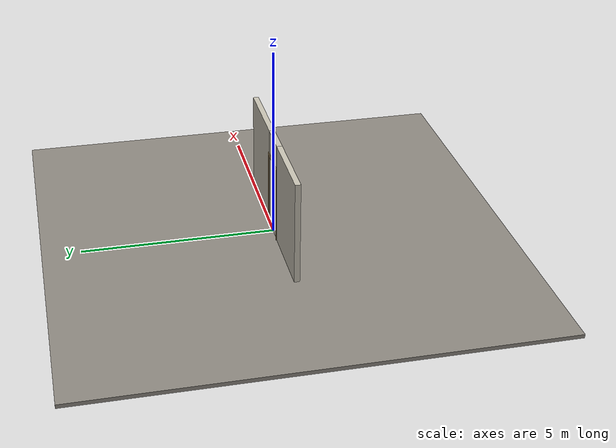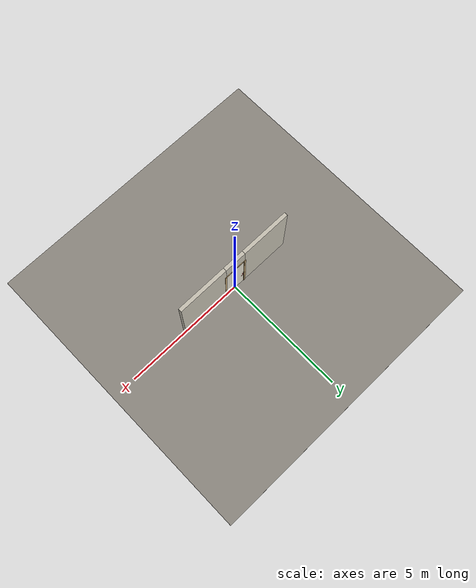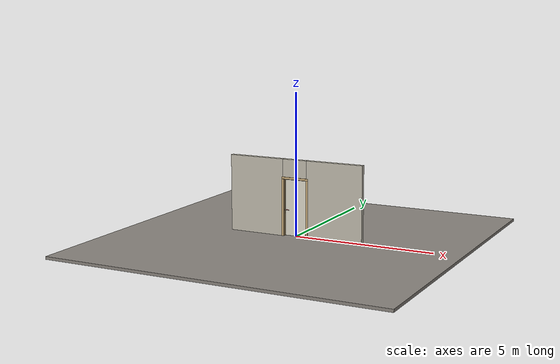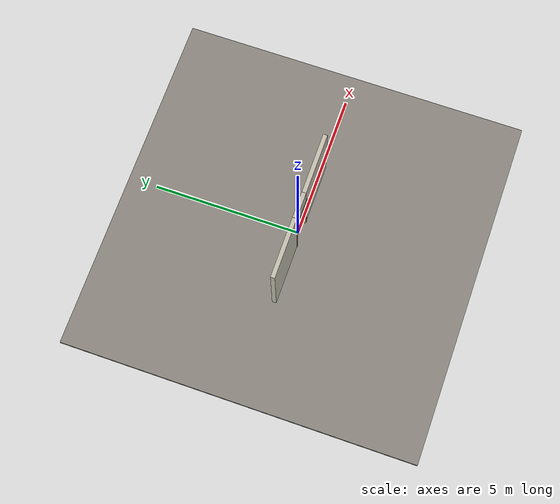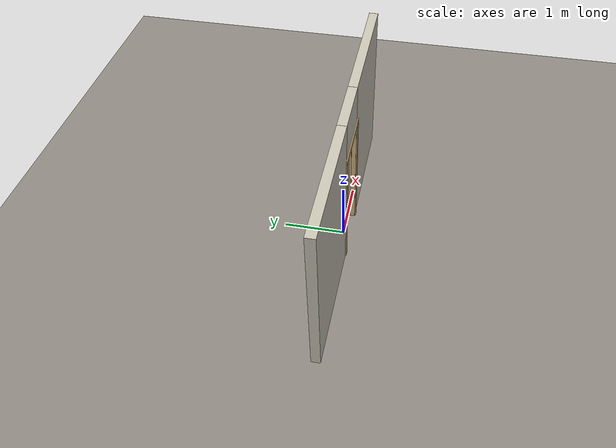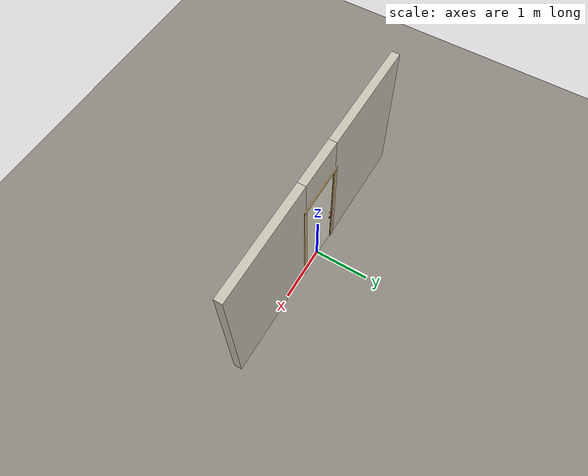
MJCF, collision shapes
<?xml version="1.0" ?>
<mujoco model="db0606_swing_single_full">
  <compiler angle="radian" meshdir="../../hardware" texturedir="../../textures" autolimits="true" inertiafromgeom="false"/>
  <option timestep="0.002" integrator="implicitfast" cone="elliptic" impratio="10" noslip_iterations="3">
    <flag multiccd="enable"/>
  </option>
  <size memory="16M"/>
  <default>
    <geom condim="4" solref="0.005 1" solimp="0.95 0.99 0.001"/>
    <joint solreflimit="0.005 1" solimplimit="0.95 0.99 0.001"/>
    <tendon solreflimit="0.005 1"/>
    <equality solref="0.002 1"/>
  </default>
  <visual>
    <headlight ambient="0.4 0.4 0.4" diffuse="0.7 0.7 0.7" specular="0.2 0.2 0.2"/>
    <quality shadowsize="4096"/>
    <map znear="0.01" zfar="60"/>
  </visual>
  <asset>
    <mesh name="hinge_96510cf394" file="hinge_96510cf394.obj"/>
    <mesh name="hinge_jamb_7fd4ca52b2" file="hinge_jamb_7fd4ca52b2.obj"/>
    <mesh name="lever_748f08efca" file="lever_748f08efca.obj"/>
    <material name="mat_floor" rgba="0.55 0.53 0.5 1" specular="0.2" shininess="0.15" reflectance="0"/>
    <material name="mat_wall" rgba="0.78 0.76 0.7 1" specular="0.2" shininess="0.1" reflectance="0"/>
    <material name="mat_leaf" rgba="0.9 0.88 0.82 1" specular="0.2" shininess="0.58" reflectance="0"/>
    <material name="mat_leaf_louver" rgba="0.765 0.748 0.697 1" specular="0.2" shininess="0.4" reflectance="0"/>
    <material name="mat_hinge" rgba="0.65 0.66 0.68 1" specular="0.74" shininess="0.5" reflectance="0.36"/>
    <material name="mat_op_chrome" rgba="0.9 0.9 0.92 1" specular="0.8" shininess="0.9" reflectance="0.4"/>
    <material name="mat_trim" rgba="0.85 0.66 0.3 1" specular="0.8" shininess="0.75" reflectance="0.4"/>
    <material name="mat_bolt" rgba="0.85 0.66 0.3 1" specular="0.8" shininess="0.75" reflectance="0.4"/>
    <material name="mat_frame" rgba="0.82 0.7 0.5 1" specular="0.2" shininess="0.45" reflectance="0"/>
    <texture name="skybox" type="skybox" builtin="gradient" rgb1="0.6 0.7 0.85" rgb2="0.9 0.92 0.95" width="256" height="256"/>
  </asset>
  <worldbody>
    <light name="sun" pos="1.5 -2.5 4" dir="-0.3 0.5 -0.8" directional="true" diffuse="0.8 0.8 0.8" specular="0.3 0.3 0.3" castshadow="true"/>
    <light name="fill" pos="-1.5 2.5 3" dir="0.3 -0.5 -0.7" directional="true" diffuse="0.35 0.35 0.4" castshadow="false"/>
    <camera name="robot_view" pos="0 -2.546125 1.698475" xyaxes="1 0 0 0 0.26963 0.962964" fovy="52"/>
    <camera name="far_view" pos="0 2.450125 1.698475" xyaxes="-1 0 0 0 -0.26963 0.962964" fovy="52"/>
    <camera name="iso" pos="-1.898575 -2.146425 2.098175" xyaxes="0.741536 -0.670913 0 0.242917 0.268487 0.932151" fovy="46"/>
    <camera name="detail_handle" pos="-0.0764 -0.8725 1.194" xyaxes="0.97561 0.219512 0 -0.070934 0.315262 0.94635" fovy="38"/>
    <geom name="floor" type="box" size="6 6 0.05" pos="0 0 -0.05" material="mat_floor" group="0" contype="1" conaffinity="1" friction="0.8 0.005 0.0001" density="2400"/>
    <geom name="wall_left" type="box" size="1.0205 0.0725 1.35" pos="-1.4795 -0.048 1.35" material="mat_wall" group="0" contype="1" conaffinity="1" friction="0.6 0.005 0.0001" density="800"/>
    <geom name="wall_right" type="box" size="1.0355 0.0725 1.35" pos="1.4645 -0.048 1.35" material="mat_wall" group="0" contype="1" conaffinity="1" friction="0.6 0.005 0.0001" density="800"/>
    <geom name="wall_header" type="box" size="0.444 0.0725 0.3265" pos="-0.015 -0.048 2.3735" material="mat_wall" group="0" contype="1" conaffinity="1" friction="0.6 0.005 0.0001" density="800"/>
    <geom name="hinge_0_jamb" type="mesh" mesh="hinge_jamb_7fd4ca52b2" pos="0.407 0.0245 0.259" quat="0 0 0 1" material="mat_hinge" group="1" contype="0" conaffinity="0" density="7850"/>
    <geom name="hinge_1_jamb" type="mesh" mesh="hinge_jamb_7fd4ca52b2" pos="0.407 0.0245 1.0015" quat="0 0 0 1" material="mat_hinge" group="1" contype="0" conaffinity="0" density="7850"/>
    <geom name="hinge_2_jamb" type="mesh" mesh="hinge_jamb_7fd4ca52b2" pos="0.407 0.0245 1.814" quat="0 0 0 1" material="mat_hinge" group="1" contype="0" conaffinity="0" density="7850"/>
    <geom name="jamb_hinge" type="box" size="0.0095 0.0725 0.999" pos="0.4195 -0.048 0.999" material="mat_frame" group="0" contype="1" conaffinity="1" friction="0.6 0.005 0.0001" density="400"/>
    <geom name="strike_914_wall_n" type="box" size="0.0245 0.056325 0.0167" pos="-0.4345 -0.064175 0.914" material="mat_frame" group="0" contype="1" conaffinity="1" friction="0.6 0.005 0.0001" density="400"/>
    <geom name="strike_914_wall_p" type="box" size="0.0245 0.008 0.0167" pos="-0.4345 0.01585 0.914" material="mat_frame" group="0" contype="1" conaffinity="1" friction="0.6 0.005 0.0001" density="400"/>
    <geom name="strike_914_ramp" type="box" size="0.0245 0.01649 0.0167" pos="-0.439136 0.028673 0.914" quat="0.977148 0 0 0.212558" material="mat_frame" group="0" contype="1" conaffinity="1" friction="0.12 0.005 0.0001" density="400"/>
    <geom name="strike_914_back" type="box" size="0.01615 0.00785 0.0167" pos="-0.44285 0 0.914" material="mat_frame" group="0" contype="1" conaffinity="1" friction="0.6 0.005 0.0001" density="400"/>
    <geom name="jamb_strike_0" type="box" size="0.0245 0.0725 0.44865" pos="-0.4345 -0.048 0.44865" material="mat_frame" group="0" contype="1" conaffinity="1" friction="0.6 0.005 0.0001" density="400"/>
    <geom name="jamb_strike_1" type="box" size="0.0245 0.0725 0.53365" pos="-0.4345 -0.048 1.46435" material="mat_frame" group="0" contype="1" conaffinity="1" friction="0.6 0.005 0.0001" density="400"/>
    <geom name="jamb_head" type="box" size="0.444 0.0725 0.0095" pos="-0.015 -0.048 2.0075" material="mat_frame" group="0" contype="1" conaffinity="1" friction="0.6 0.005 0.0001" density="400"/>
    <geom name="head_stud" type="box" size="0.444 0.0725 0.015" pos="-0.015 -0.048 2.032" material="mat_wall" group="0" contype="1" conaffinity="1" friction="0.6 0.005 0.0001" density="500"/>
    <geom name="stop_hinge" type="box" size="0.0055 0.016 0.999" pos="0.4045 -0.034 0.999" material="mat_frame" group="0" contype="1" conaffinity="1" friction="0.6 0.005 0.0001" density="400"/>
    <geom name="stop_strike" type="box" size="0.0055 0.016 0.999" pos="-0.4045 -0.034 0.999" material="mat_frame" group="0" contype="1" conaffinity="1" friction="0.6 0.005 0.0001" density="400"/>
    <geom name="stop_head" type="box" size="0.41 0.016 0.0055" pos="0 -0.034 1.9925" material="mat_frame" group="0" contype="1" conaffinity="1" friction="0.6 0.005 0.0001" density="400"/>
    <geom name="casing_l_n" type="box" size="0.035 0.008 1.0085" pos="-0.459 -0.1285 0.999" material="mat_frame" group="2" contype="0" conaffinity="0" density="400"/>
    <geom name="casing_r_n" type="box" size="0.035 0.008 1.0085" pos="0.459 -0.1285 0.999" material="mat_frame" group="2" contype="0" conaffinity="0" density="400"/>
    <geom name="casing_h_n" type="box" size="0.494 0.008 0.035" pos="0 -0.1285 2.047" material="mat_frame" group="2" contype="0" conaffinity="0" density="400"/>
    <geom name="casing_l_p" type="box" size="0.035 0.008 1.0085" pos="-0.459 0.0325 0.999" material="mat_frame" group="2" contype="0" conaffinity="0" density="400"/>
    <geom name="casing_r_p" type="box" size="0.035 0.008 1.0085" pos="0.459 0.0325 0.999" material="mat_frame" group="2" contype="0" conaffinity="0" density="400"/>
    <geom name="casing_h_p" type="box" size="0.494 0.008 0.035" pos="0 0.0325 2.047" material="mat_frame" group="2" contype="0" conaffinity="0" density="400"/>
    <site name="approach_point" pos="0 -1.5 0" quat="1 0 0 0" size="0.05" rgba="0.2 0.9 0.2 0.5" group="4"/>
    <site name="goal_point" pos="0 1.5 0" quat="1 0 0 0" size="0.05" rgba="0.2 0.9 0.2 0.5" group="4"/>
    <site name="door_plane_center" pos="0 0 0.999" quat="1 0 0 0" size="0.02" rgba="0.2 0.9 0.2 0.5" group="4"/>
    <body name="leaf" pos="0.41 0 0">
      <inertial pos="-0.396928 0.000468 1.002174" mass="12.935072" quat="0.499523 0.501086 -0.498897 0.500491" diaginertia="0.758951667 4.275342568 5.031446487"/>
      <joint name="leaf_hinge" type="hinge" axis="0 0 -1" pos="-0.003 0.0245 0" limited="true" range="0 1.745329" damping="0.206618" frictionloss="6.2112" armature="0.02"/>
      <geom name="leaf_slab" type="box" size="0.4065 0.0175 0.9925" pos="-0.4095 0 1.0015" material="mat_leaf" group="0" contype="1" conaffinity="1" friction="0.35 0.005 0.0001" density="1"/>
      <geom name="leaf_louver_0" type="box" size="0.3165 0.002 0.026527" pos="-0.4095 0 0.252614" quat="0.953717 0.300706 0 0" material="mat_leaf_louver" group="1" contype="0" conaffinity="0" density="1"/>
      <geom name="leaf_louver_1" type="box" size="0.3165 0.002 0.026527" pos="-0.4095 0 0.303141" quat="0.953717 0.300706 0 0" material="mat_leaf_louver" group="1" contype="0" conaffinity="0" density="1"/>
      <geom name="leaf_louver_2" type="box" size="0.3165 0.002 0.026527" pos="-0.4095 0 0.353668" quat="0.953717 0.300706 0 0" material="mat_leaf_louver" group="1" contype="0" conaffinity="0" density="1"/>
      <geom name="leaf_louver_3" type="box" size="0.3165 0.002 0.026527" pos="-0.4095 0 0.404195" quat="0.953717 0.300706 0 0" material="mat_leaf_louver" group="1" contype="0" conaffinity="0" density="1"/>
      <geom name="leaf_louver_4" type="box" size="0.3165 0.002 0.026527" pos="-0.4095 0 0.454723" quat="0.953717 0.300706 0 0" material="mat_leaf_louver" group="1" contype="0" conaffinity="0" density="1"/>
      <geom name="leaf_louver_5" type="box" size="0.3165 0.002 0.026527" pos="-0.4095 0 0.50525" quat="0.953717 0.300706 0 0" material="mat_leaf_louver" group="1" contype="0" conaffinity="0" density="1"/>
      <geom name="leaf_louver_6" type="box" size="0.3165 0.002 0.026527" pos="-0.4095 0 0.555777" quat="0.953717 0.300706 0 0" material="mat_leaf_louver" group="1" contype="0" conaffinity="0" density="1"/>
      <geom name="leaf_louver_7" type="box" size="0.3165 0.002 0.026527" pos="-0.4095 0 0.606305" quat="0.953717 0.300706 0 0" material="mat_leaf_louver" group="1" contype="0" conaffinity="0" density="1"/>
      <geom name="leaf_louver_8" type="box" size="0.3165 0.002 0.026527" pos="-0.4095 0 0.656832" quat="0.953717 0.300706 0 0" material="mat_leaf_louver" group="1" contype="0" conaffinity="0" density="1"/>
      <geom name="leaf_louver_9" type="box" size="0.3165 0.002 0.026527" pos="-0.4095 0 0.707359" quat="0.953717 0.300706 0 0" material="mat_leaf_louver" group="1" contype="0" conaffinity="0" density="1"/>
      <geom name="leaf_louver_10" type="box" size="0.3165 0.002 0.026527" pos="-0.4095 0 0.757886" quat="0.953717 0.300706 0 0" material="mat_leaf_louver" group="1" contype="0" conaffinity="0" density="1"/>
      <geom name="leaf_louver_11" type="box" size="0.3165 0.002 0.026527" pos="-0.4095 0 0.808414" quat="0.953717 0.300706 0 0" material="mat_leaf_louver" group="1" contype="0" conaffinity="0" density="1"/>
      <geom name="leaf_louver_12" type="box" size="0.3165 0.002 0.026527" pos="-0.4095 0 0.858941" quat="0.953717 0.300706 0 0" material="mat_leaf_louver" group="1" contype="0" conaffinity="0" density="1"/>
      <geom name="leaf_louver_13" type="box" size="0.3165 0.002 0.026527" pos="-0.4095 0 0.909468" quat="0.953717 0.300706 0 0" material="mat_leaf_louver" group="1" contype="0" conaffinity="0" density="1"/>
      <geom name="leaf_louver_14" type="box" size="0.3165 0.002 0.026527" pos="-0.4095 0 0.959995" quat="0.953717 0.300706 0 0" material="mat_leaf_louver" group="1" contype="0" conaffinity="0" density="1"/>
      <geom name="leaf_louver_15" type="box" size="0.3165 0.002 0.026527" pos="-0.4095 0 1.010523" quat="0.953717 0.300706 0 0" material="mat_leaf_louver" group="1" contype="0" conaffinity="0" density="1"/>
      <geom name="leaf_louver_16" type="box" size="0.3165 0.002 0.026527" pos="-0.4095 0 1.06105" quat="0.953717 0.300706 0 0" material="mat_leaf_louver" group="1" contype="0" conaffinity="0" density="1"/>
      <geom name="leaf_louver_17" type="box" size="0.3165 0.002 0.026527" pos="-0.4095 0 1.111577" quat="0.953717 0.300706 0 0" material="mat_leaf_louver" group="1" contype="0" conaffinity="0" density="1"/>
      <geom name="leaf_louver_18" type="box" size="0.3165 0.002 0.026527" pos="-0.4095 0 1.162105" quat="0.953717 0.300706 0 0" material="mat_leaf_louver" group="1" contype="0" conaffinity="0" density="1"/>
      <geom name="leaf_louver_19" type="box" size="0.3165 0.002 0.026527" pos="-0.4095 0 1.212632" quat="0.953717 0.300706 0 0" material="mat_leaf_louver" group="1" contype="0" conaffinity="0" density="1"/>
      <geom name="leaf_louver_20" type="box" size="0.3165 0.002 0.026527" pos="-0.4095 0 1.263159" quat="0.953717 0.300706 0 0" material="mat_leaf_louver" group="1" contype="0" conaffinity="0" density="1"/>
      <geom name="leaf_louver_21" type="box" size="0.3165 0.002 0.026527" pos="-0.4095 0 1.313686" quat="0.953717 0.300706 0 0" material="mat_leaf_louver" group="1" contype="0" conaffinity="0" density="1"/>
      <geom name="leaf_louver_22" type="box" size="0.3165 0.002 0.026527" pos="-0.4095 0 1.364214" quat="0.953717 0.300706 0 0" material="mat_leaf_louver" group="1" contype="0" conaffinity="0" density="1"/>
      <geom name="leaf_louver_23" type="box" size="0.3165 0.002 0.026527" pos="-0.4095 0 1.414741" quat="0.953717 0.300706 0 0" material="mat_leaf_louver" group="1" contype="0" conaffinity="0" density="1"/>
      <geom name="leaf_louver_24" type="box" size="0.3165 0.002 0.026527" pos="-0.4095 0 1.465268" quat="0.953717 0.300706 0 0" material="mat_leaf_louver" group="1" contype="0" conaffinity="0" density="1"/>
      <geom name="leaf_louver_25" type="box" size="0.3165 0.002 0.026527" pos="-0.4095 0 1.515795" quat="0.953717 0.300706 0 0" material="mat_leaf_louver" group="1" contype="0" conaffinity="0" density="1"/>
      <geom name="leaf_louver_26" type="box" size="0.3165 0.002 0.026527" pos="-0.4095 0 1.566323" quat="0.953717 0.300706 0 0" material="mat_leaf_louver" group="1" contype="0" conaffinity="0" density="1"/>
      <geom name="leaf_louver_27" type="box" size="0.3165 0.002 0.026527" pos="-0.4095 0 1.61685" quat="0.953717 0.300706 0 0" material="mat_leaf_louver" group="1" contype="0" conaffinity="0" density="1"/>
      <geom name="leaf_louver_28" type="box" size="0.3165 0.002 0.026527" pos="-0.4095 0 1.667377" quat="0.953717 0.300706 0 0" material="mat_leaf_louver" group="1" contype="0" conaffinity="0" density="1"/>
      <geom name="leaf_louver_29" type="box" size="0.3165 0.002 0.026527" pos="-0.4095 0 1.717905" quat="0.953717 0.300706 0 0" material="mat_leaf_louver" group="1" contype="0" conaffinity="0" density="1"/>
      <geom name="leaf_louver_30" type="box" size="0.3165 0.002 0.026527" pos="-0.4095 0 1.768432" quat="0.953717 0.300706 0 0" material="mat_leaf_louver" group="1" contype="0" conaffinity="0" density="1"/>
      <geom name="leaf_louver_31" type="box" size="0.3165 0.002 0.026527" pos="-0.4095 0 1.818959" quat="0.953717 0.300706 0 0" material="mat_leaf_louver" group="1" contype="0" conaffinity="0" density="1"/>
      <geom name="leaf_louver_32" type="box" size="0.3165 0.002 0.026527" pos="-0.4095 0 1.869486" quat="0.953717 0.300706 0 0" material="mat_leaf_louver" group="1" contype="0" conaffinity="0" density="1"/>
      <geom name="hinge_0" type="mesh" mesh="hinge_96510cf394" pos="-0.003 0.0245 0.259" quat="0 0 0 1" material="mat_hinge" group="1" contype="0" conaffinity="0" density="7850"/>
      <geom name="hinge_1" type="mesh" mesh="hinge_96510cf394" pos="-0.003 0.0245 1.0015" quat="0 0 0 1" material="mat_hinge" group="1" contype="0" conaffinity="0" density="7850"/>
      <geom name="hinge_2" type="mesh" mesh="hinge_96510cf394" pos="-0.003 0.0245 1.814" quat="0 0 0 1" material="mat_hinge" group="1" contype="0" conaffinity="0" density="7850"/>
      <geom name="leaf_latch_bolt_faceplate" type="box" size="0.0006 0.01235 0.0267" pos="-0.8154 0 0.914" material="mat_bolt" group="1" contype="0" conaffinity="0" density="8500"/>
      <site name="leaf_edge_mid" pos="-0.816 0 0.9925" quat="1 0 0 0" size="0.02" rgba="0.2 0.9 0.2 0.5" group="4"/>
      <body name="leaf_handle" pos="-0.756 0 0.914">
        <inertial pos="0.024417 0 0" mass="0.839807" quat="0.707107 0 0 -0.707107" diaginertia="0.001182467 0.002815434 0.003861215"/>
        <joint name="leaf_handle_hinge" type="hinge" axis="0 1 0" limited="true" range="0 0.87" damping="0.205084" frictionloss="0.04" stiffness="0.9" springref="-0.444444" armature="0.01"/>
        <geom name="leaf_handle_spindle" type="cylinder" size="0.006 0.0255" pos="0 0 0" quat="0.707107 -0.707107 0 0" material="mat_op_chrome" group="1" contype="0" conaffinity="0" density="7850"/>
        <geom name="leaf_handle_lever_n" type="mesh" mesh="lever_748f08efca" pos="0 -0.0175 0" quat="0 0 -0.707107 0.707107" material="mat_op_chrome" group="1" contype="0" conaffinity="0" density="3000"/>
        <geom name="leaf_handle_lever_col_n" type="capsule" size="0.008 0.048" pos="0.056 -0.0725 0" quat="0.707107 0 0.707107 0" material="mat_op_chrome" group="3" contype="1" conaffinity="1" rgba="0.8 0.3 0.3 0.25" friction="0.7 0.01 0.0001" density="3000"/>
        <geom name="leaf_handle_hub_col_n" type="cylinder" size="0.012 0.022" pos="0 -0.0475 0" quat="0.707107 -0.707107 0 0" material="mat_op_chrome" group="3" contype="1" conaffinity="1" rgba="0.8 0.3 0.3 0.25" friction="0.6 0.005 0.0001" density="3000"/>
        <geom name="leaf_handle_lever_p" type="mesh" mesh="lever_748f08efca" pos="0 0.0175 0" quat="0 0 0.707107 0.707107" material="mat_op_chrome" group="1" contype="0" conaffinity="0" density="3000"/>
        <geom name="leaf_handle_lever_col_p" type="capsule" size="0.008 0.048" pos="0.056 0.0725 0" quat="0.707107 0 0.707107 0" material="mat_op_chrome" group="3" contype="1" conaffinity="1" rgba="0.8 0.3 0.3 0.25" friction="0.7 0.01 0.0001" density="3000"/>
        <geom name="leaf_handle_hub_col_p" type="cylinder" size="0.012 0.022" pos="0 0.0475 0" quat="0.707107 -0.707107 0 0" material="mat_op_chrome" group="3" contype="1" conaffinity="1" rgba="0.8 0.3 0.3 0.25" friction="0.6 0.005 0.0001" density="3000"/>
        <site name="leaf_handle_grip_n" pos="0.0896 -0.0725 0" quat="1 0 0 0" size="0.012" rgba="0.2 0.9 0.2 0.5" group="4"/>
        <site name="leaf_handle_grip_p" pos="0.0896 0.0725 0" quat="1 0 0 0" size="0.012" rgba="0.2 0.9 0.2 0.5" group="4"/>
      </body>
      <body name="leaf_latch_bolt" pos="-0.816 0 0.914">
        <inertial pos="0.00865 0 0" mass="0.041419" quat="0.92388 0.382683 0 0" diaginertia="0.000000798 0.000005598 0.000005598"/>
        <joint name="leaf_latch_bolt_slide" type="slide" axis="1 0 0" limited="true" range="0 0.0127" damping="2" frictionloss="0.3" stiffness="300" springref="-0.008333" armature="0.1"/>
        <geom name="leaf_latch_bolt_capsule" type="capsule" size="0.00635 0.015" pos="0.00865 0 0" quat="0.707107 0 -0.707107 0" material="mat_bolt" group="0" contype="1" conaffinity="1" friction="0.2 0.005 0.0001" density="8500"/>
      </body>
    </body>
  </worldbody>
  <tendon>
    <fixed name="leaf_latch_bolt_coupling" limited="true" range="0 10">
      <joint joint="leaf_latch_bolt_slide" coef="1"/>
      <joint joint="leaf_handle_hinge" coef="-0.016076"/>
    </fixed>
  </tendon>
  <sensor>
    <jointpos name="leaf_hinge_pos" joint="leaf_hinge"/>
    <jointvel name="leaf_hinge_vel" joint="leaf_hinge"/>
    <jointpos name="leaf_handle_hinge_pos" joint="leaf_handle_hinge"/>
    <jointvel name="leaf_handle_hinge_vel" joint="leaf_handle_hinge"/>
    <jointpos name="leaf_latch_bolt_slide_pos" joint="leaf_latch_bolt_slide"/>
    <jointvel name="leaf_latch_bolt_slide_vel" joint="leaf_latch_bolt_slide"/>
  </sensor>
</mujoco>
